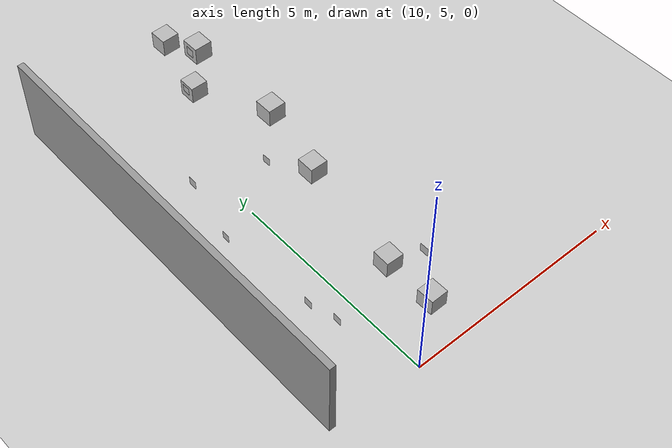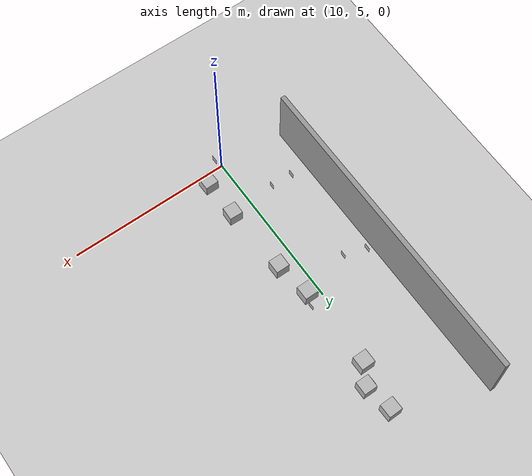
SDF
<sdf version="1.6">
 <world name="default">
  <model name="ground_plane">
   <static>1</static>
   <link name="link">
    <collision name="collision">
     <geometry><plane><normal>0 0 1</normal><size>300 300</size></plane></geometry>
     <surface>
      <contact><collide_bitmask>65535</collide_bitmask></contact>
      <friction><ode><mu>100</mu><mu2>50</mu2></ode></friction>
     </surface>
    </collision>
    <visual name="visual">
     <geometry><plane><normal>0 0 1</normal><size>100 100</size></plane></geometry>
     <material>
      <script><uri>file://media/materials/scripts/gazebo.material</uri><name>Gazebo/Grey</name></script>
     </material>
    </visual>
   </link>
  </model>
  <model name="Estanterias2">
   <link name="Wall_7">
    <pose>-9.54199 -5.19373 -0.244468 0 -0 1.5708</pose>
    <inertial>
     <inertia><ixx>0</ixx><ixy>0</ixy><ixz>0</ixz><iyy>0</iyy><iyz>0</iyz><izz>0</izz></inertia>
     <mass>0</mass>
    </inertial>
    <visual name="Wall_7_Visual">
     <pose>0 0 1.25 0 -0 0</pose>
     <geometry><box><size>9.74609 0.15 2.08966</size></box></geometry>
     <material>
      <script><uri>file://media/materials/scripts/gazebo.material</uri><name>Gazebo/Grey</name></script>
      <ambient>1 1 1 1</ambient>
      <shader type="pixel"/>
      <diffuse>0.7 0.7 0.7 1</diffuse>
      <specular>0.01 0.01 0.01 1</specular>
      <emissive>0 0 0 1</emissive>
     </material>
     <meta><layer>0</layer></meta>
    </visual>
    <collision name="Wall_7_Collision">
     <pose>0 0 1.25 0 -0 0</pose>
     <geometry><box><size>9.74609 0.15 2.08966</size></box></geometry>
     <surface>
      <friction>
       <ode><mu>1</mu><mu2>1</mu2><fdir1>0 0 0</fdir1><slip1>0</slip1><slip2>0</slip2></ode>
       <torsional>
        <coefficient>1</coefficient>
        <patch_radius>0</patch_radius>
        <surface_radius>0</surface_radius>
        <use_patch_radius>1</use_patch_radius>
        <ode><slip>0</slip></ode>
       </torsional>
      </friction>
      <bounce><restitution_coefficient>0</restitution_coefficient><threshold>1e+06</threshold></bounce>
      <contact>
       <collide_without_contact>0</collide_without_contact>
       <collide_without_contact_bitmask>1</collide_without_contact_bitmask>
       <collide_bitmask>1</collide_bitmask>
       <ode>
        <soft_cfm>0</soft_cfm>
        <soft_erp>0.2</soft_erp>
        <kp>1e+13</kp>
        <kd>1</kd>
        <max_vel>0.01</max_vel>
        <min_depth>0</min_depth>
       </ode>
       <bullet>
        <split_impulse>1</split_impulse>
        <split_impulse_penetration_threshold>-0.01</split_impulse_penetration_threshold>
        <soft_cfm>0</soft_cfm>
        <soft_erp>0.2</soft_erp>
        <kp>1e+13</kp>
        <kd>1</kd>
       </bullet>
      </contact>
     </surface>
    </collision>
   </link>
   <static>1</static>
   <pose>17.4434 15.1661 0 0 -0 0</pose>
  </model>
  <model name="Plano29">
   <link name="link">
    <gravity>0</gravity>
    <pose>-0 -2.02242 0.25 0 -0 0</pose>
    <inertial>
     <mass>1e-06</mass>
     <inertia><ixx>0.00058</ixx><ixy>0</ixy><ixz>0</ixz><iyy>0.00058</iyy><iyz>0</iyz><izz>0.00019</izz></inertia>
    </inertial>
    <visual name="visual">
     <geometry><box><size>0.2 1e-06 0.2</size></box></geometry>
     <material>
      <script>
       <uri>model://Plano29/materials/scripts</uri>
       <uri>model://Plano29/materials/textures</uri>
       <name>Plano29/Diffuse</name>
      </script>
      <shader type="pixel"/>
     </material>
     <cast_shadows>0</cast_shadows>
    </visual>
    <collision name="collision">
     <geometry><box><size>0.2 1e-06 0.2</size></box></geometry>
     <surface>
      <friction>
       <ode><mu>1</mu><mu2>1</mu2><fdir1>0 0 0</fdir1><slip1>0</slip1><slip2>0</slip2></ode>
       <torsional>
        <coefficient>1</coefficient>
        <patch_radius>0</patch_radius>
        <surface_radius>0</surface_radius>
        <use_patch_radius>1</use_patch_radius>
        <ode><slip>0</slip></ode>
       </torsional>
      </friction>
      <bounce><restitution_coefficient>0</restitution_coefficient><threshold>1e+06</threshold></bounce>
      <contact>
       <collide_without_contact>0</collide_without_contact>
       <collide_without_contact_bitmask>1</collide_without_contact_bitmask>
       <collide_bitmask>1</collide_bitmask>
       <ode>
        <soft_cfm>0</soft_cfm>
        <soft_erp>0.2</soft_erp>
        <kp>1e+13</kp>
        <kd>1</kd>
        <max_vel>0.01</max_vel>
        <min_depth>0</min_depth>
       </ode>
       <bullet>
        <split_impulse>1</split_impulse>
        <split_impulse_penetration_threshold>-0.01</split_impulse_penetration_threshold>
        <soft_cfm>0</soft_cfm>
        <soft_erp>0.2</soft_erp>
        <kp>1e+13</kp>
        <kd>1</kd>
       </bullet>
      </contact>
     </surface>
    </collision>
   </link>
   <static>0</static>
   <pose>10.7522 10.1107 1.5598 0 0 -1.57894</pose>
  </model>
  <model name="Plano12">
   <link name="link">
    <gravity>0</gravity>
    <pose>-0 -1.74134 0.25 0 -0 0</pose>
    <inertial>
     <mass>1e-06</mass>
     <inertia><ixx>0.00058</ixx><ixy>0</ixy><ixz>0</ixz><iyy>0.00058</iyy><iyz>0</iyz><izz>0.00019</izz></inertia>
    </inertial>
    <visual name="visual">
     <geometry><box><size>0.2 1e-06 0.2</size></box></geometry>
     <material>
      <script>
       <uri>model://Plano12/materials/scripts</uri>
       <uri>model://Plano12/materials/textures</uri>
       <name>Plano12/Diffuse</name>
      </script>
      <shader type="pixel"/>
     </material>
     <cast_shadows>0</cast_shadows>
    </visual>
    <collision name="collision">
     <geometry><box><size>0.2 1e-06 0.2</size></box></geometry>
     <surface>
      <friction>
       <ode><mu>1</mu><mu2>1</mu2><fdir1>0 0 0</fdir1><slip1>0</slip1><slip2>0</slip2></ode>
       <torsional>
        <coefficient>1</coefficient>
        <patch_radius>0</patch_radius>
        <surface_radius>0</surface_radius>
        <use_patch_radius>1</use_patch_radius>
        <ode><slip>0</slip></ode>
       </torsional>
      </friction>
      <bounce><restitution_coefficient>0</restitution_coefficient><threshold>1e+06</threshold></bounce>
      <contact>
       <collide_without_contact>0</collide_without_contact>
       <collide_without_contact_bitmask>1</collide_without_contact_bitmask>
       <collide_bitmask>1</collide_bitmask>
       <ode>
        <soft_cfm>0</soft_cfm>
        <soft_erp>0.2</soft_erp>
        <kp>1e+13</kp>
        <kd>1</kd>
        <max_vel>0.01</max_vel>
        <min_depth>0</min_depth>
       </ode>
       <bullet>
        <split_impulse>1</split_impulse>
        <split_impulse_penetration_threshold>-0.01</split_impulse_penetration_threshold>
        <soft_cfm>0</soft_cfm>
        <soft_erp>0.2</soft_erp>
        <kp>1e+13</kp>
        <kd>1</kd>
       </bullet>
      </contact>
     </surface>
    </collision>
   </link>
   <static>0</static>
   <pose>10.7037 9.472 0.272564 0 0 -1.59709</pose>
  </model>
  <model name="Plano20">
   <link name="link">
    <gravity>0</gravity>
    <pose>0.051279 -1.40422 0.25 0 -0 0</pose>
    <inertial>
     <mass>1e-06</mass>
     <inertia><ixx>0.00058</ixx><ixy>0</ixy><ixz>0</ixz><iyy>0.00058</iyy><iyz>0</iyz><izz>0.00019</izz></inertia>
    </inertial>
    <visual name="visual">
     <geometry><box><size>0.2 1e-06 0.2</size></box></geometry>
     <material>
      <script>
       <uri>model://Plano20/materials/scripts</uri>
       <uri>model://Plano20/materials/textures</uri>
       <name>Plano20/Diffuse</name>
      </script>
      <shader type="pixel"/>
     </material>
     <cast_shadows>0</cast_shadows>
    </visual>
    <collision name="collision">
     <geometry><box><size>0.2 1e-06 0.2</size></box></geometry>
     <surface>
      <friction>
       <ode><mu>1</mu><mu2>1</mu2><fdir1>0 0 0</fdir1><slip1>0</slip1><slip2>0</slip2></ode>
       <torsional>
        <coefficient>1</coefficient>
        <patch_radius>0</patch_radius>
        <surface_radius>0</surface_radius>
        <use_patch_radius>1</use_patch_radius>
        <ode><slip>0</slip></ode>
       </torsional>
      </friction>
      <bounce><restitution_coefficient>0</restitution_coefficient><threshold>1e+06</threshold></bounce>
      <contact>
       <collide_without_contact>0</collide_without_contact>
       <collide_without_contact_bitmask>1</collide_without_contact_bitmask>
       <collide_bitmask>1</collide_bitmask>
       <ode>
        <soft_cfm>0</soft_cfm>
        <soft_erp>0.2</soft_erp>
        <kp>1e+13</kp>
        <kd>1</kd>
        <max_vel>0.01</max_vel>
        <min_depth>0</min_depth>
       </ode>
       <bullet>
        <split_impulse>1</split_impulse>
        <split_impulse_penetration_threshold>-0.01</split_impulse_penetration_threshold>
        <soft_cfm>0</soft_cfm>
        <soft_erp>0.2</soft_erp>
        <kp>1e+13</kp>
        <kd>1</kd>
       </bullet>
      </contact>
     </surface>
    </collision>
   </link>
   <static>0</static>
   <pose>10.7236 6.60015 0.262989 0 0 -1.59313</pose>
  </model>
  <model name="Plano26_0">
   <link name="link">
    <gravity>0</gravity>
    <pose>0.21886 -1.85494 0.25 0 -0 0</pose>
    <inertial>
     <mass>1e-06</mass>
     <inertia><ixx>0.00058</ixx><ixy>0</ixy><ixz>0</ixz><iyy>0.00058</iyy><iyz>0</iyz><izz>0.00019</izz></inertia>
    </inertial>
    <visual name="visual">
     <geometry><box><size>0.2 1e-06 0.2</size></box></geometry>
     <material>
      <script>
       <uri>model://Plano26/materials/scripts</uri>
       <uri>model://Plano26/materials/textures</uri>
       <name>Plano26/Diffuse</name>
      </script>
      <shader type="pixel"/>
     </material>
     <cast_shadows>0</cast_shadows>
    </visual>
    <collision name="collision">
     <geometry><box><size>0.2 1e-06 0.2</size></box></geometry>
     <surface>
      <friction>
       <ode><mu>1</mu><mu2>1</mu2><fdir1>0 0 0</fdir1><slip1>0</slip1><slip2>0</slip2></ode>
       <torsional>
        <coefficient>1</coefficient>
        <patch_radius>0</patch_radius>
        <surface_radius>0</surface_radius>
        <use_patch_radius>1</use_patch_radius>
        <ode><slip>0</slip></ode>
       </torsional>
      </friction>
      <bounce><restitution_coefficient>0</restitution_coefficient><threshold>1e+06</threshold></bounce>
      <contact>
       <collide_without_contact>0</collide_without_contact>
       <collide_without_contact_bitmask>1</collide_without_contact_bitmask>
       <collide_bitmask>1</collide_bitmask>
       <ode>
        <soft_cfm>0</soft_cfm>
        <soft_erp>0.2</soft_erp>
        <kp>1e+13</kp>
        <kd>1</kd>
        <max_vel>0.01</max_vel>
        <min_depth>0</min_depth>
       </ode>
       <bullet>
        <split_impulse>1</split_impulse>
        <split_impulse_penetration_threshold>-0.01</split_impulse_penetration_threshold>
        <soft_cfm>0</soft_cfm>
        <soft_erp>0.2</soft_erp>
        <kp>1e+13</kp>
        <kd>1</kd>
       </bullet>
      </contact>
     </surface>
    </collision>
   </link>
   <static>0</static>
   <pose>10.7205 7.06672 0.90647 0 0 -1.58759</pose>
  </model>
  <model name="Plano26">
   <link name="link">
    <gravity>0</gravity>
    <pose>0.259182 -0.023465 0.724825 0 -0 0</pose>
    <inertial>
     <mass>1e-06</mass>
     <inertia><ixx>0.00058</ixx><ixy>0</ixy><ixz>0</ixz><iyy>0.00058</iyy><iyz>0</iyz><izz>0.00019</izz></inertia>
    </inertial>
    <visual name="visual">
     <geometry><box><size>0.2 1e-06 0.2</size></box></geometry>
     <material>
      <script>
       <uri>model://Plano26/materials/scripts</uri>
       <uri>model://Plano26/materials/textures</uri>
       <name>Plano26/Diffuse</name>
      </script>
      <shader type="pixel"/>
     </material>
     <cast_shadows>0</cast_shadows>
    </visual>
    <collision name="collision">
     <geometry><box><size>0.2 1e-06 0.2</size></box></geometry>
     <surface>
      <friction>
       <ode><mu>1</mu><mu2>1</mu2><fdir1>0 0 0</fdir1><slip1>0</slip1><slip2>0</slip2></ode>
       <torsional>
        <coefficient>1</coefficient>
        <patch_radius>0</patch_radius>
        <surface_radius>0</surface_radius>
        <use_patch_radius>1</use_patch_radius>
        <ode><slip>0</slip></ode>
       </torsional>
      </friction>
      <bounce><restitution_coefficient>0</restitution_coefficient><threshold>1e+06</threshold></bounce>
      <contact>
       <collide_without_contact>0</collide_without_contact>
       <collide_without_contact_bitmask>1</collide_without_contact_bitmask>
       <collide_bitmask>1</collide_bitmask>
       <ode>
        <soft_cfm>0</soft_cfm>
        <soft_erp>0.2</soft_erp>
        <kp>1e+13</kp>
        <kd>1</kd>
        <max_vel>0.01</max_vel>
        <min_depth>0</min_depth>
       </ode>
       <bullet>
        <split_impulse>1</split_impulse>
        <split_impulse_penetration_threshold>-0.01</split_impulse_penetration_threshold>
        <soft_cfm>0</soft_cfm>
        <soft_erp>0.2</soft_erp>
        <kp>1e+13</kp>
        <kd>1</kd>
       </bullet>
      </contact>
     </surface>
    </collision>
   </link>
   <static>0</static>
   <pose>10.7123 6.04698 1.56042 0 0 -1.57945</pose>
  </model>
  <model name="CuboQR26">
   <link name="link">
    <pose>0.664542 -0.243367 0.336399 0 -0 0.010192</pose>
    <inertial>
     <mass>0.39</mass>
     <inertia><ixx>0.00058</ixx><ixy>0</ixy><ixz>0</ixz><iyy>0.00058</iyy><iyz>0</iyz><izz>0.00019</izz></inertia>
    </inertial>
    <visual name="visual">
     <geometry><box><size>0.4 0.4 0.4</size></box></geometry>
     <material>
      <script>
       <uri>model://Caja/materials/scripts</uri>
       <uri>model://Caja/materials/textures</uri>
       <name>Caja/Diffuse</name>
      </script>
      <shader type="pixel"/>
     </material>
    </visual>
    <collision name="collision">
     <geometry><box><size>0.4 0.4 0.4</size></box></geometry>
     <surface>
      <friction>
       <ode><mu>1</mu><mu2>1</mu2><fdir1>0 0 0</fdir1><slip1>0</slip1><slip2>0</slip2></ode>
       <torsional>
        <coefficient>1</coefficient>
        <patch_radius>0</patch_radius>
        <surface_radius>0</surface_radius>
        <use_patch_radius>1</use_patch_radius>
        <ode><slip>0</slip></ode>
       </torsional>
      </friction>
      <bounce><restitution_coefficient>0</restitution_coefficient><threshold>1e+06</threshold></bounce>
      <contact>
       <collide_without_contact>0</collide_without_contact>
       <collide_without_contact_bitmask>1</collide_without_contact_bitmask>
       <collide_bitmask>1</collide_bitmask>
       <ode>
        <soft_cfm>0</soft_cfm>
        <soft_erp>0.2</soft_erp>
        <kp>1e+13</kp>
        <kd>1</kd>
        <max_vel>0.01</max_vel>
        <min_depth>0</min_depth>
       </ode>
       <bullet>
        <split_impulse>1</split_impulse>
        <split_impulse_penetration_threshold>-0.01</split_impulse_penetration_threshold>
        <soft_cfm>0</soft_cfm>
        <soft_erp>0.2</soft_erp>
        <kp>1e+13</kp>
        <kd>1</kd>
       </bullet>
      </contact>
     </surface>
    </collision>
   </link>
   <static>0</static>
   <pose>11.1786 7.0573 0.190011 1.55874 -1.5547 -1.5921</pose>
  </model>
  <model name="CuboQR20">
   <link name="link">
    <pose>-0.727301 -0.980706 0.197448 -0.030889 0.015573 0.01146</pose>
    <inertial>
     <mass>0.39</mass>
     <inertia><ixx>0.00058</ixx><ixy>0</ixy><ixz>0</ixz><iyy>0.00058</iyy><iyz>0</iyz><izz>0.00019</izz></inertia>
    </inertial>
    <visual name="visual">
     <geometry><box><size>0.4 0.4 0.4</size></box></geometry>
     <material>
      <script>
       <uri>model://Caja/materials/scripts</uri>
       <uri>model://Caja/materials/textures</uri>
       <name>Caja/Diffuse</name>
      </script>
      <shader type="pixel"/>
     </material>
    </visual>
    <collision name="collision">
     <geometry><box><size>0.4 0.4 0.4</size></box></geometry>
     <surface>
      <friction>
       <ode><mu>1</mu><mu2>1</mu2><fdir1>0 0 0</fdir1><slip1>0</slip1><slip2>0</slip2></ode>
       <torsional>
        <coefficient>1</coefficient>
        <patch_radius>0</patch_radius>
        <surface_radius>0</surface_radius>
        <use_patch_radius>1</use_patch_radius>
        <ode><slip>0</slip></ode>
       </torsional>
      </friction>
      <bounce><restitution_coefficient>0</restitution_coefficient><threshold>1e+06</threshold></bounce>
      <contact>
       <collide_without_contact>0</collide_without_contact>
       <collide_without_contact_bitmask>1</collide_without_contact_bitmask>
       <collide_bitmask>1</collide_bitmask>
       <ode>
        <soft_cfm>0</soft_cfm>
        <soft_erp>0.2</soft_erp>
        <kp>1e+13</kp>
        <kd>1</kd>
        <max_vel>0.01</max_vel>
        <min_depth>0</min_depth>
       </ode>
       <bullet>
        <split_impulse>1</split_impulse>
        <split_impulse_penetration_threshold>-0.01</split_impulse_penetration_threshold>
        <soft_cfm>0</soft_cfm>
        <soft_erp>0.2</soft_erp>
        <kp>1e+13</kp>
        <kd>1</kd>
       </bullet>
      </contact>
     </surface>
    </collision>
   </link>
   <static>0</static>
   <pose>10.6868 6.60333 0.110144 -0.605086 1.55187 -0.622813</pose>
  </model>
  <model name="CuboQR12">
   <link name="link">
    <pose>-0.004227 -0.200769 1.62481 -0.706369 -0 0.028238</pose>
    <inertial>
     <mass>0.39</mass>
     <inertia><ixx>0.00058</ixx><ixy>0</ixy><ixz>0</ixz><iyy>0.00058</iyy><iyz>0</iyz><izz>0.00019</izz></inertia>
    </inertial>
    <visual name="visual">
     <geometry><box><size>0.4 0.4 0.4</size></box></geometry>
     <material>
      <script>
       <uri>model://Caja/materials/scripts</uri>
       <uri>model://Caja/materials/textures</uri>
       <name>Caja/Diffuse</name>
      </script>
      <shader type="pixel"/>
     </material>
    </visual>
    <collision name="collision">
     <geometry><box><size>0.4 0.4 0.4</size></box></geometry>
     <surface>
      <friction>
       <ode><mu>1</mu><mu2>1</mu2><fdir1>0 0 0</fdir1><slip1>0</slip1><slip2>0</slip2></ode>
       <torsional>
        <coefficient>1</coefficient>
        <patch_radius>0</patch_radius>
        <surface_radius>0</surface_radius>
        <use_patch_radius>1</use_patch_radius>
        <ode><slip>0</slip></ode>
       </torsional>
      </friction>
      <bounce><restitution_coefficient>0</restitution_coefficient><threshold>1e+06</threshold></bounce>
      <contact>
       <collide_without_contact>0</collide_without_contact>
       <collide_without_contact_bitmask>1</collide_without_contact_bitmask>
       <collide_bitmask>1</collide_bitmask>
       <ode>
        <soft_cfm>0</soft_cfm>
        <soft_erp>0.2</soft_erp>
        <kp>1e+13</kp>
        <kd>1</kd>
        <max_vel>0.01</max_vel>
        <min_depth>0</min_depth>
       </ode>
       <bullet>
        <split_impulse>1</split_impulse>
        <split_impulse_penetration_threshold>-0.01</split_impulse_penetration_threshold>
        <soft_cfm>0</soft_cfm>
        <soft_erp>0.2</soft_erp>
        <kp>1e+13</kp>
        <kd>1</kd>
       </bullet>
      </contact>
     </surface>
    </collision>
   </link>
   <static>0</static>
   <pose>10.915 10.3127 0.432547 0.706183 0.018332 -0.029999</pose>
  </model>
  <model name="CuboQR27">
   <link name="link">
    <pose>-0.03378 -0.427214 2.26145 0.003116 -0 0</pose>
    <inertial>
     <mass>0.39</mass>
     <inertia><ixx>0.00058</ixx><ixy>0</ixy><ixz>0</ixz><iyy>0.00058</iyy><iyz>0</iyz><izz>0.00019</izz></inertia>
    </inertial>
    <visual name="visual">
     <geometry><box><size>0.4 0.4 0.4</size></box></geometry>
     <material>
      <script>
       <uri>model://Caja/materials/scripts</uri>
       <uri>model://Caja/materials/textures</uri>
       <name>Caja/Diffuse</name>
      </script>
      <shader type="pixel"/>
     </material>
    </visual>
    <collision name="collision">
     <geometry><box><size>0.4 0.4 0.4</size></box></geometry>
     <surface>
      <friction>
       <ode><mu>1</mu><mu2>1</mu2><fdir1>0 0 0</fdir1><slip1>0</slip1><slip2>0</slip2></ode>
       <torsional>
        <coefficient>1</coefficient>
        <patch_radius>0</patch_radius>
        <surface_radius>0</surface_radius>
        <use_patch_radius>1</use_patch_radius>
        <ode><slip>0</slip></ode>
       </torsional>
      </friction>
      <bounce><restitution_coefficient>0</restitution_coefficient><threshold>1e+06</threshold></bounce>
      <contact>
       <collide_without_contact>0</collide_without_contact>
       <collide_without_contact_bitmask>1</collide_without_contact_bitmask>
       <collide_bitmask>1</collide_bitmask>
       <ode>
        <soft_cfm>0</soft_cfm>
        <soft_erp>0.2</soft_erp>
        <kp>1e+13</kp>
        <kd>1</kd>
        <max_vel>0.01</max_vel>
        <min_depth>0</min_depth>
       </ode>
       <bullet>
        <split_impulse>1</split_impulse>
        <split_impulse_penetration_threshold>-0.01</split_impulse_penetration_threshold>
        <soft_cfm>0</soft_cfm>
        <soft_erp>0.2</soft_erp>
        <kp>1e+13</kp>
        <kd>1</kd>
       </bullet>
      </contact>
     </surface>
    </collision>
   </link>
   <static>0</static>
   <pose>10.9202 10.7757 -0.058677 -0.0031 -4e-06 0.004007</pose>
  </model>
  <model name="CuboQR15">
   <link name="link">
    <pose>-0.020052 0.396364 0.912898 0 -0 0.011646</pose>
    <inertial>
     <mass>0.39</mass>
     <inertia><ixx>0.00058</ixx><ixy>0</ixy><ixz>0</ixz><iyy>0.00058</iyy><iyz>0</iyz><izz>0.00019</izz></inertia>
    </inertial>
    <visual name="visual">
     <geometry><box><size>0.4 0.4 0.4</size></box></geometry>
     <material>
      <script>
       <uri>model://Caja/materials/scripts</uri>
       <uri>model://Caja/materials/textures</uri>
       <name>Caja/Diffuse</name>
      </script>
      <shader type="pixel"/>
     </material>
    </visual>
    <collision name="collision">
     <geometry><box><size>0.4 0.4 0.4</size></box></geometry>
     <surface>
      <friction>
       <ode><mu>1</mu><mu2>1</mu2><fdir1>0 0 0</fdir1><slip1>0</slip1><slip2>0</slip2></ode>
       <torsional>
        <coefficient>1</coefficient>
        <patch_radius>0</patch_radius>
        <surface_radius>0</surface_radius>
        <use_patch_radius>1</use_patch_radius>
        <ode><slip>0</slip></ode>
       </torsional>
      </friction>
      <bounce><restitution_coefficient>0</restitution_coefficient><threshold>1e+06</threshold></bounce>
      <contact>
       <collide_without_contact>0</collide_without_contact>
       <collide_without_contact_bitmask>1</collide_without_contact_bitmask>
       <collide_bitmask>1</collide_bitmask>
       <ode>
        <soft_cfm>0</soft_cfm>
        <soft_erp>0.2</soft_erp>
        <kp>1e+13</kp>
        <kd>1</kd>
        <max_vel>0.01</max_vel>
        <min_depth>0</min_depth>
       </ode>
       <bullet>
        <split_impulse>1</split_impulse>
        <split_impulse_penetration_threshold>-0.01</split_impulse_penetration_threshold>
        <soft_cfm>0</soft_cfm>
        <soft_erp>0.2</soft_erp>
        <kp>1e+13</kp>
        <kd>1</kd>
       </bullet>
      </contact>
     </surface>
    </collision>
   </link>
   <static>0</static>
   <pose>10.8659 12.5795 -0.061967 4e-06 4e-06 -0.020269</pose>
  </model>
  <model name="CuboQR14">
   <link name="link">
    <pose>-0.059862 1.30163 1.59661 0.003858 -0 0.037736</pose>
    <inertial>
     <mass>0.39</mass>
     <inertia><ixx>0.00058</ixx><ixy>0</ixy><ixz>0</ixz><iyy>0.00058</iyy><iyz>0</iyz><izz>0.00019</izz></inertia>
    </inertial>
    <visual name="visual">
     <geometry><box><size>0.4 0.4 0.4</size></box></geometry>
     <material>
      <script>
       <uri>model://Caja/materials/scripts</uri>
       <uri>model://Caja/materials/textures</uri>
       <name>Caja/Diffuse</name>
      </script>
      <shader type="pixel"/>
     </material>
    </visual>
    <collision name="collision">
     <geometry><box><size>0.4 0.4 0.4</size></box></geometry>
     <surface>
      <friction>
       <ode><mu>1</mu><mu2>1</mu2><fdir1>0 0 0</fdir1><slip1>0</slip1><slip2>0</slip2></ode>
       <torsional>
        <coefficient>1</coefficient>
        <patch_radius>0</patch_radius>
        <surface_radius>0</surface_radius>
        <use_patch_radius>1</use_patch_radius>
        <ode><slip>0</slip></ode>
       </torsional>
      </friction>
      <bounce><restitution_coefficient>0</restitution_coefficient><threshold>1e+06</threshold></bounce>
      <contact>
       <collide_without_contact>0</collide_without_contact>
       <collide_without_contact_bitmask>1</collide_without_contact_bitmask>
       <collide_bitmask>1</collide_bitmask>
       <ode>
        <soft_cfm>0</soft_cfm>
        <soft_erp>0.2</soft_erp>
        <kp>1e+13</kp>
        <kd>1</kd>
        <max_vel>0.01</max_vel>
        <min_depth>0</min_depth>
       </ode>
       <bullet>
        <split_impulse>1</split_impulse>
        <split_impulse_penetration_threshold>-0.01</split_impulse_penetration_threshold>
        <soft_cfm>0</soft_cfm>
        <soft_erp>0.2</soft_erp>
        <kp>1e+13</kp>
        <kd>1</kd>
       </bullet>
      </contact>
     </surface>
    </collision>
   </link>
   <static>0</static>
   <pose>10.9107 12.6221 -0.053191 -0.003852 -0.000146 -0.021597</pose>
  </model>
  <model name="CuboQR17">
   <link name="link">
    <pose>1.24465 2.03477 0.062042 1e-06 0.134249 0</pose>
    <inertial>
     <mass>0.39</mass>
     <inertia><ixx>0.00058</ixx><ixy>0</ixy><ixz>0</ixz><iyy>0.00058</iyy><iyz>0</iyz><izz>0.00019</izz></inertia>
    </inertial>
    <visual name="visual">
     <geometry><box><size>0.4 0.4 0.4</size></box></geometry>
     <material>
      <script>
       <uri>model://Caja/materials/scripts</uri>
       <uri>model://Caja/materials/textures</uri>
       <name>Caja/Diffuse</name>
      </script>
      <shader type="pixel"/>
     </material>
    </visual>
    <collision name="collision">
     <geometry><box><size>0.4 0.4 0.4</size></box></geometry>
     <surface>
      <friction>
       <ode><mu>1</mu><mu2>1</mu2><fdir1>0 0 0</fdir1><slip1>0</slip1><slip2>0</slip2></ode>
       <torsional>
        <coefficient>1</coefficient>
        <patch_radius>0</patch_radius>
        <surface_radius>0</surface_radius>
        <use_patch_radius>1</use_patch_radius>
        <ode><slip>0</slip></ode>
       </torsional>
      </friction>
      <bounce><restitution_coefficient>0</restitution_coefficient><threshold>1e+06</threshold></bounce>
      <contact>
       <collide_without_contact>0</collide_without_contact>
       <collide_without_contact_bitmask>1</collide_without_contact_bitmask>
       <collide_bitmask>1</collide_bitmask>
       <ode>
        <soft_cfm>0</soft_cfm>
        <soft_erp>0.2</soft_erp>
        <kp>1e+13</kp>
        <kd>1</kd>
        <max_vel>0.01</max_vel>
        <min_depth>0</min_depth>
       </ode>
       <bullet>
        <split_impulse>1</split_impulse>
        <split_impulse_penetration_threshold>-0.01</split_impulse_penetration_threshold>
        <soft_cfm>0</soft_cfm>
        <soft_erp>0.2</soft_erp>
        <kp>1e+13</kp>
        <kd>1</kd>
       </bullet>
      </contact>
     </surface>
    </collision>
   </link>
   <static>0</static>
   <pose>11.083 13.9138 0.169342 1.57078 1.7e-05 -1.70182</pose>
  </model>
  <model name="Plano14">
   <link name="link">
    <gravity>0</gravity>
    <pose>-0.347565 -0.08524 -0.004382 0.061553 0.001825 0.044055</pose>
    <inertial>
     <mass>1e-06</mass>
     <inertia><ixx>0.00058</ixx><ixy>0</ixy><ixz>0</ixz><iyy>0.00058</iyy><iyz>0</iyz><izz>0.00019</izz></inertia>
    </inertial>
    <visual name="visual">
     <geometry><box><size>0.2 1e-06 0.2</size></box></geometry>
     <material>
      <script>
       <uri>model://Plano14/materials/scripts</uri>
       <uri>model://Plano14/materials/textures</uri>
       <name>Plano14/Diffuse</name>
      </script>
      <shader type="pixel"/>
     </material>
     <cast_shadows>0</cast_shadows>
    </visual>
    <collision name="collision">
     <geometry><box><size>0.2 1e-06 0.2</size></box></geometry>
     <surface>
      <friction>
       <ode><mu>1</mu><mu2>1</mu2><fdir1>0 0 0</fdir1><slip1>0</slip1><slip2>0</slip2></ode>
       <torsional>
        <coefficient>1</coefficient>
        <patch_radius>0</patch_radius>
        <surface_radius>0</surface_radius>
        <use_patch_radius>1</use_patch_radius>
        <ode><slip>0</slip></ode>
       </torsional>
      </friction>
      <bounce><restitution_coefficient>0</restitution_coefficient><threshold>1e+06</threshold></bounce>
      <contact>
       <collide_without_contact>0</collide_without_contact>
       <collide_without_contact_bitmask>1</collide_without_contact_bitmask>
       <collide_bitmask>1</collide_bitmask>
       <ode>
        <soft_cfm>0</soft_cfm>
        <soft_erp>0.2</soft_erp>
        <kp>1e+13</kp>
        <kd>1</kd>
        <max_vel>0.01</max_vel>
        <min_depth>0</min_depth>
       </ode>
       <bullet>
        <split_impulse>1</split_impulse>
        <split_impulse_penetration_threshold>-0.01</split_impulse_penetration_threshold>
        <soft_cfm>0</soft_cfm>
        <soft_erp>0.2</soft_erp>
        <kp>1e+13</kp>
        <kd>1</kd>
       </bullet>
      </contact>
     </surface>
    </collision>
   </link>
   <static>0</static>
   <pose>10.7078 12.6284 0.90675 -0 -0 -1.62849</pose>
  </model>
  <model name="Plano15">
   <link name="link">
    <gravity>0</gravity>
    <pose>-0.107306 -0.00902 1.95167 0 -0 0</pose>
    <inertial>
     <mass>1e-06</mass>
     <inertia><ixx>0.00058</ixx><ixy>0</ixy><ixz>0</ixz><iyy>0.00058</iyy><iyz>0</iyz><izz>0.00019</izz></inertia>
    </inertial>
    <visual name="visual">
     <geometry><box><size>0.2 1e-06 0.2</size></box></geometry>
     <material>
      <script>
       <uri>model://Plano15/materials/scripts</uri>
       <uri>model://Plano15/materials/textures</uri>
       <name>Plano15/Diffuse</name>
      </script>
      <shader type="pixel"/>
     </material>
     <cast_shadows>0</cast_shadows>
    </visual>
    <collision name="collision">
     <geometry><box><size>0.2 1e-06 0.2</size></box></geometry>
     <surface>
      <friction>
       <ode><mu>1</mu><mu2>1</mu2><fdir1>0 0 0</fdir1><slip1>0</slip1><slip2>0</slip2></ode>
       <torsional>
        <coefficient>1</coefficient>
        <patch_radius>0</patch_radius>
        <surface_radius>0</surface_radius>
        <use_patch_radius>1</use_patch_radius>
        <ode><slip>0</slip></ode>
       </torsional>
      </friction>
      <bounce><restitution_coefficient>0</restitution_coefficient><threshold>1e+06</threshold></bounce>
      <contact>
       <collide_without_contact>0</collide_without_contact>
       <collide_without_contact_bitmask>1</collide_without_contact_bitmask>
       <collide_bitmask>1</collide_bitmask>
       <ode>
        <soft_cfm>0</soft_cfm>
        <soft_erp>0.2</soft_erp>
        <kp>1e+13</kp>
        <kd>1</kd>
        <max_vel>0.01</max_vel>
        <min_depth>0</min_depth>
       </ode>
       <bullet>
        <split_impulse>1</split_impulse>
        <split_impulse_penetration_threshold>-0.01</split_impulse_penetration_threshold>
        <soft_cfm>0</soft_cfm>
        <soft_erp>0.2</soft_erp>
        <kp>1e+13</kp>
        <kd>1</kd>
       </bullet>
      </contact>
     </surface>
    </collision>
   </link>
   <static>0</static>
   <pose>10.6606 12.5838 0.25794 0 0 -1.60068</pose>
  </model>
  <model name="Plano27">
   <link name="link">
    <gravity>0</gravity>
    <pose>0.449193 -0.023846 -0.057385 0 -0 0.032924</pose>
    <inertial>
     <mass>1e-06</mass>
     <inertia><ixx>0.00058</ixx><ixy>0</ixy><ixz>0</ixz><iyy>0.00058</iyy><iyz>0</iyz><izz>0.00019</izz></inertia>
    </inertial>
    <visual name="visual">
     <geometry><box><size>0.2 1e-06 0.2</size></box></geometry>
     <material>
      <script>
       <uri>model://Plano27/materials/scripts</uri>
       <uri>model://Plano27/materials/textures</uri>
       <name>Plano27/Diffuse</name>
      </script>
      <shader type="pixel"/>
     </material>
     <cast_shadows>0</cast_shadows>
    </visual>
    <collision name="collision">
     <geometry><box><size>0.2 1e-06 0.2</size></box></geometry>
     <surface>
      <friction>
       <ode><mu>1</mu><mu2>1</mu2><fdir1>0 0 0</fdir1><slip1>0</slip1><slip2>0</slip2></ode>
       <torsional>
        <coefficient>1</coefficient>
        <patch_radius>0</patch_radius>
        <surface_radius>0</surface_radius>
        <use_patch_radius>1</use_patch_radius>
        <ode><slip>0</slip></ode>
       </torsional>
      </friction>
      <bounce><restitution_coefficient>0</restitution_coefficient><threshold>1e+06</threshold></bounce>
      <contact>
       <collide_without_contact>0</collide_without_contact>
       <collide_without_contact_bitmask>1</collide_without_contact_bitmask>
       <collide_bitmask>1</collide_bitmask>
       <ode>
        <soft_cfm>0</soft_cfm>
        <soft_erp>0.2</soft_erp>
        <kp>1e+13</kp>
        <kd>1</kd>
        <max_vel>0.01</max_vel>
        <min_depth>0</min_depth>
       </ode>
       <bullet>
        <split_impulse>1</split_impulse>
        <split_impulse_penetration_threshold>-0.01</split_impulse_penetration_threshold>
        <soft_cfm>0</soft_cfm>
        <soft_erp>0.2</soft_erp>
        <kp>1e+13</kp>
        <kd>1</kd>
       </bullet>
      </contact>
     </surface>
    </collision>
   </link>
   <static>0</static>
   <pose>10.7156 10.7789 0.90002 0 0 -1.57306</pose>
  </model>
 </world>
</sdf>
